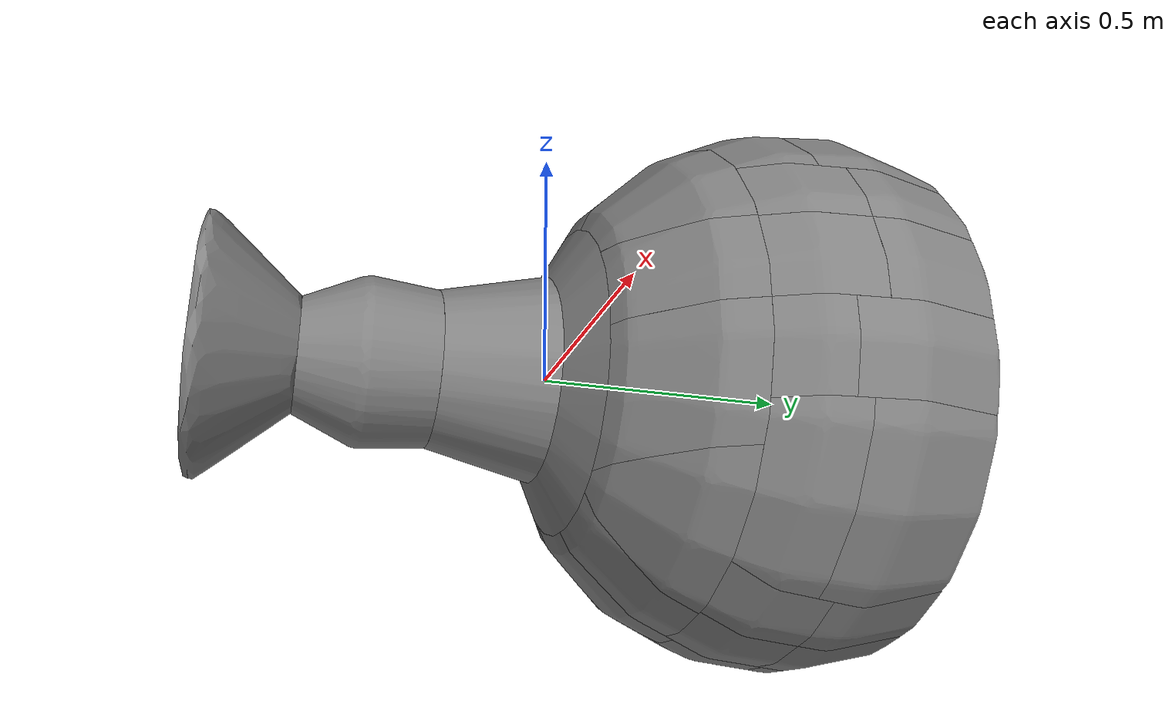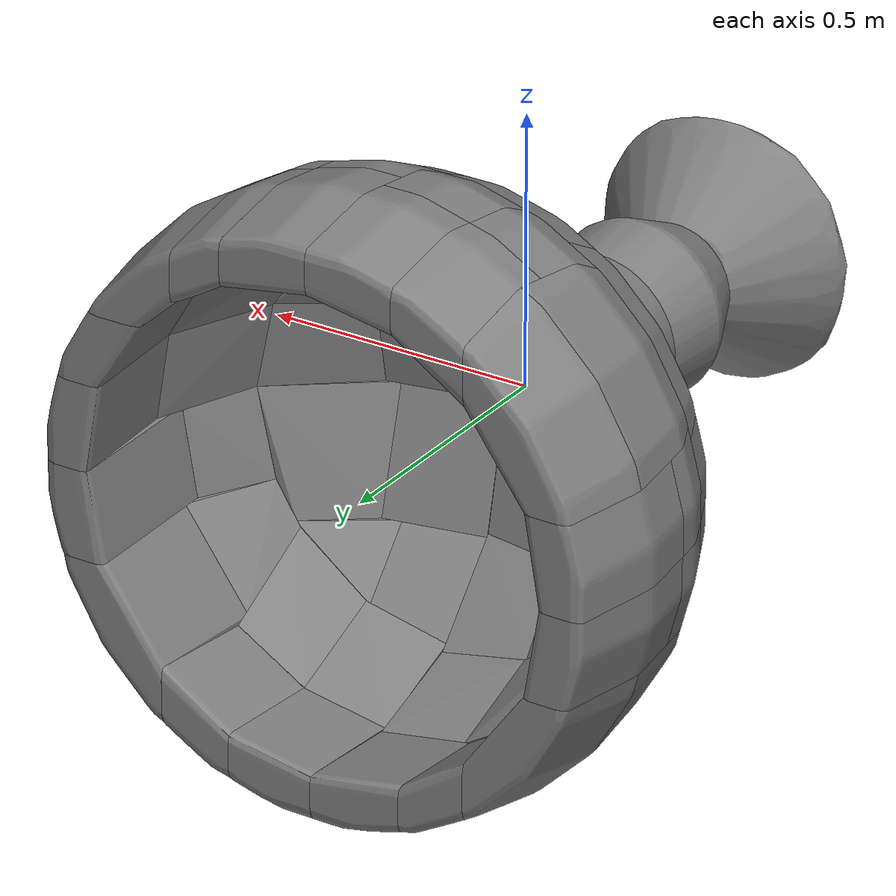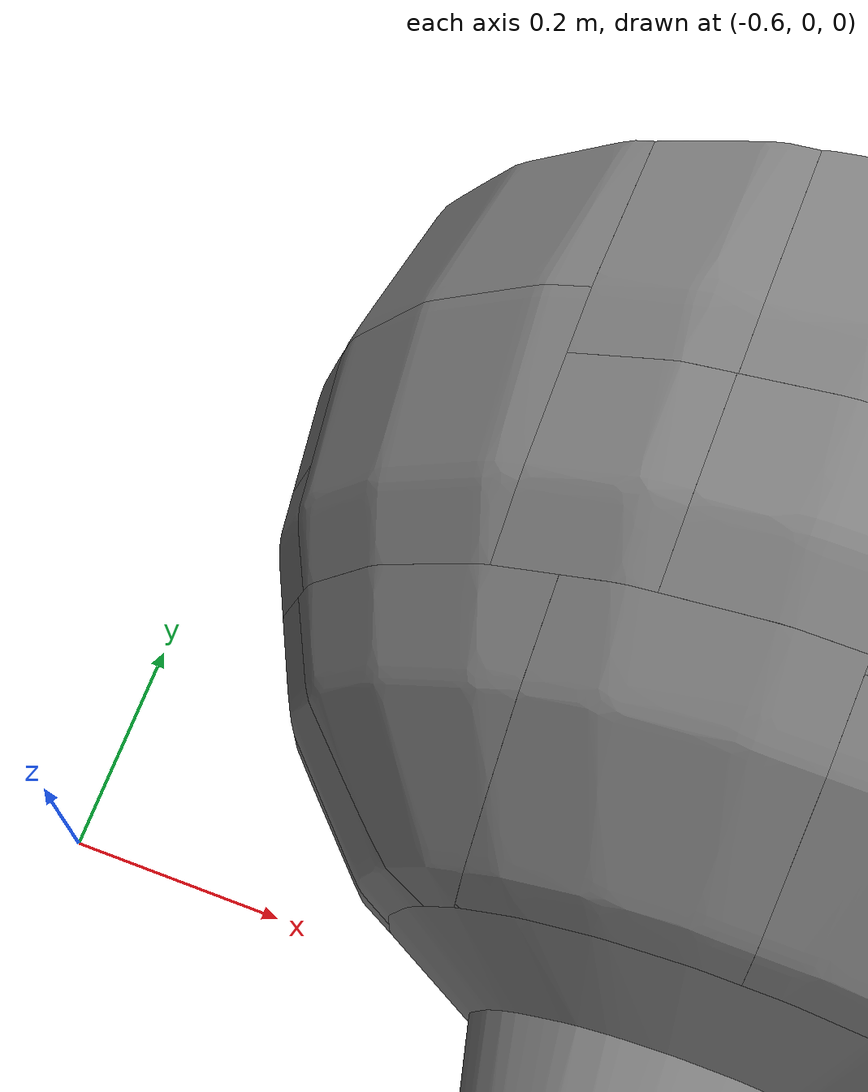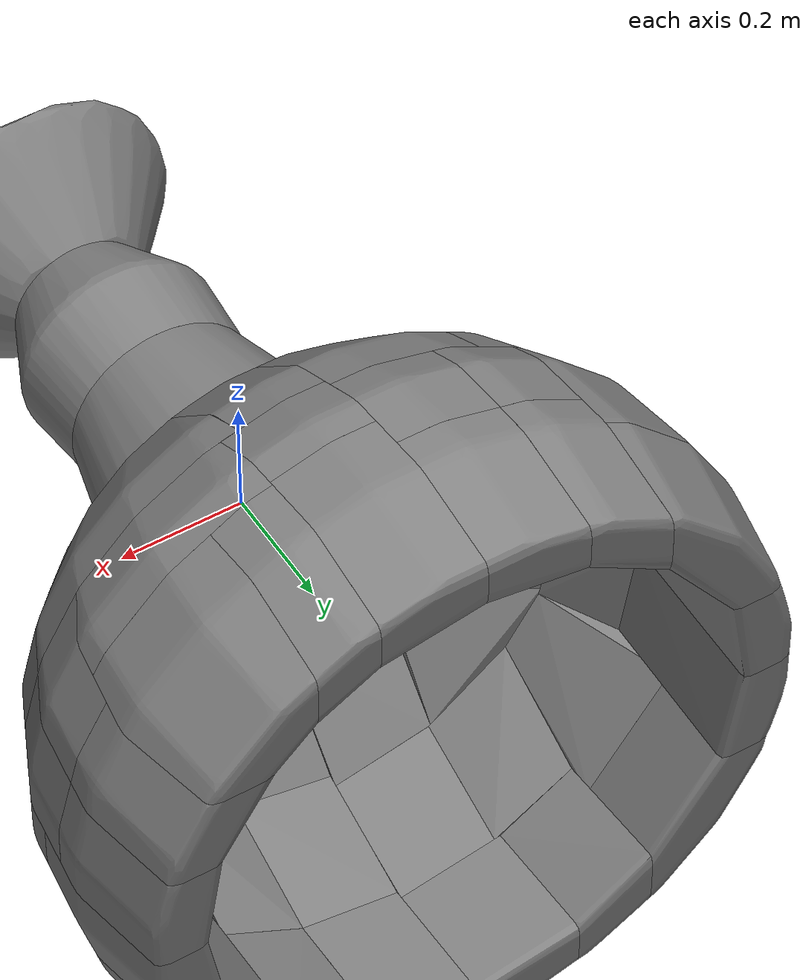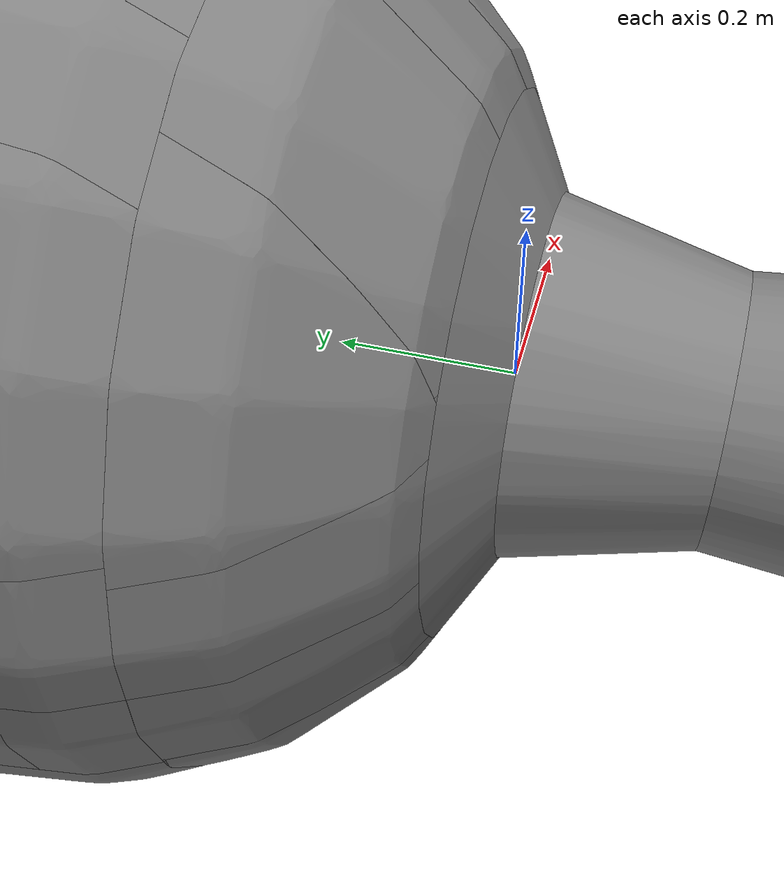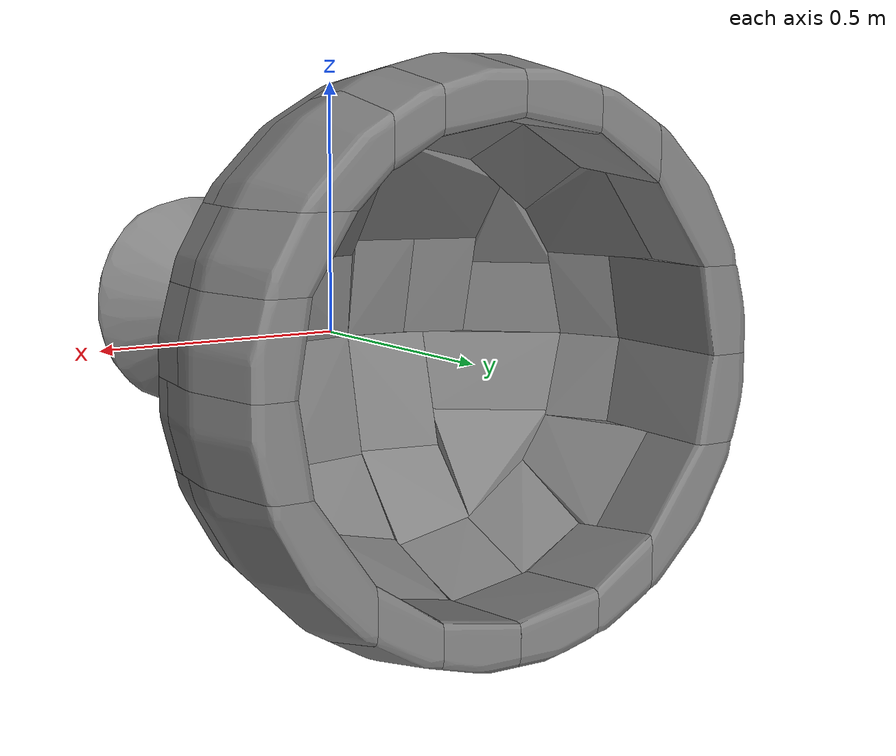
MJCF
<mujoco model="MuJoCo Model">
  <compiler angle="radian" meshdir="."/>

  <asset>
    <mesh name="convex_piece_028.obj" file="meshes/convex_piece_028.obj"/>
    <mesh name="convex_piece_018.obj" file="meshes/convex_piece_018.obj"/>
    <mesh name="convex_piece_026.obj" file="meshes/convex_piece_026.obj"/>
    <mesh name="convex_piece_021.obj" file="meshes/convex_piece_021.obj"/>
    <mesh name="convex_piece_049.obj" file="meshes/convex_piece_049.obj"/>
    <mesh name="convex_piece_051.obj" file="meshes/convex_piece_051.obj"/>
    <mesh name="convex_piece_030.obj" file="meshes/convex_piece_030.obj"/>
    <mesh name="convex_piece_012.obj" file="meshes/convex_piece_012.obj"/>
    <mesh name="convex_piece_046.obj" file="meshes/convex_piece_046.obj"/>
    <mesh name="convex_piece_042.obj" file="meshes/convex_piece_042.obj"/>
    <mesh name="convex_piece_019.obj" file="meshes/convex_piece_019.obj"/>
    <mesh name="convex_piece_040.obj" file="meshes/convex_piece_040.obj"/>
    <mesh name="convex_piece_014.obj" file="meshes/convex_piece_014.obj"/>
    <mesh name="convex_piece_020.obj" file="meshes/convex_piece_020.obj"/>
    <mesh name="convex_piece_004.obj" file="meshes/convex_piece_004.obj"/>
    <mesh name="convex_piece_039.obj" file="meshes/convex_piece_039.obj"/>
    <mesh name="convex_piece_027.obj" file="meshes/convex_piece_027.obj"/>
    <mesh name="convex_piece_001.obj" file="meshes/convex_piece_001.obj"/>
    <mesh name="convex_piece_015.obj" file="meshes/convex_piece_015.obj"/>
    <mesh name="convex_piece_005.obj" file="meshes/convex_piece_005.obj"/>
    <mesh name="convex_piece_037.obj" file="meshes/convex_piece_037.obj"/>
    <mesh name="convex_piece_036.obj" file="meshes/convex_piece_036.obj"/>
    <mesh name="convex_piece_024.obj" file="meshes/convex_piece_024.obj"/>
    <mesh name="convex_piece_013.obj" file="meshes/convex_piece_013.obj"/>
    <mesh name="convex_piece_048.obj" file="meshes/convex_piece_048.obj"/>
    <mesh name="convex_piece_029.obj" file="meshes/convex_piece_029.obj"/>
    <mesh name="convex_piece_032.obj" file="meshes/convex_piece_032.obj"/>
    <mesh name="convex_piece_050.obj" file="meshes/convex_piece_050.obj"/>
    <mesh name="convex_piece_034.obj" file="meshes/convex_piece_034.obj"/>
    <mesh name="convex_piece_002.obj" file="meshes/convex_piece_002.obj"/>
    <mesh name="convex_piece_035.obj" file="meshes/convex_piece_035.obj"/>
    <mesh name="convex_piece_043.obj" file="meshes/convex_piece_043.obj"/>
    <mesh name="convex_piece_025.obj" file="meshes/convex_piece_025.obj"/>
    <mesh name="convex_piece_033.obj" file="meshes/convex_piece_033.obj"/>
    <mesh name="convex_piece_010.obj" file="meshes/convex_piece_010.obj"/>
    <mesh name="convex_piece_044.obj" file="meshes/convex_piece_044.obj"/>
    <mesh name="convex_piece_006.obj" file="meshes/convex_piece_006.obj"/>
    <mesh name="convex_piece_045.obj" file="meshes/convex_piece_045.obj"/>
    <mesh name="convex_piece_003.obj" file="meshes/convex_piece_003.obj"/>
    <mesh name="convex_piece_038.obj" file="meshes/convex_piece_038.obj"/>
    <mesh name="convex_piece_047.obj" file="meshes/convex_piece_047.obj"/>
    <mesh name="convex_piece_008.obj" file="meshes/convex_piece_008.obj"/>
    <mesh name="convex_piece_023.obj" file="meshes/convex_piece_023.obj"/>
    <mesh name="convex_piece_022.obj" file="meshes/convex_piece_022.obj"/>
    <mesh name="convex_piece_011.obj" file="meshes/convex_piece_011.obj"/>
    <mesh name="convex_piece_053.obj" file="meshes/convex_piece_053.obj"/>
    <mesh name="convex_piece_000.obj" file="meshes/convex_piece_000.obj"/>
    <mesh name="convex_piece_016.obj" file="meshes/convex_piece_016.obj"/>
    <mesh name="convex_piece_009.obj" file="meshes/convex_piece_009.obj"/>
    <mesh name="convex_piece_007.obj" file="meshes/convex_piece_007.obj"/>
    <mesh name="convex_piece_052.obj" file="meshes/convex_piece_052.obj"/>
    <mesh name="convex_piece_041.obj" file="meshes/convex_piece_041.obj"/>
    <mesh name="convex_piece_017.obj" file="meshes/convex_piece_017.obj"/>
    <mesh name="convex_piece_031.obj" file="meshes/convex_piece_031.obj"/>
  </asset>

  <worldbody>
    <geom name="object_visual_0" type="mesh" contype="0" conaffinity="0" density="0" mesh="convex_piece_028.obj"/>
    <geom name="object_collision_0" type="mesh" mesh="convex_piece_028.obj"/>
    <geom name="object_visual_1" type="mesh" contype="0" conaffinity="0" density="0" mesh="convex_piece_018.obj"/>
    <geom name="object_collision_1" type="mesh" mesh="convex_piece_018.obj"/>
    <geom name="object_visual_2" type="mesh" contype="0" conaffinity="0" density="0" mesh="convex_piece_026.obj"/>
    <geom name="object_collision_2" type="mesh" mesh="convex_piece_026.obj"/>
    <geom name="object_visual_3" type="mesh" contype="0" conaffinity="0" density="0" mesh="convex_piece_021.obj"/>
    <geom name="object_collision_3" type="mesh" mesh="convex_piece_021.obj"/>
    <geom name="object_visual_4" type="mesh" contype="0" conaffinity="0" density="0" mesh="convex_piece_049.obj"/>
    <geom name="object_collision_4" type="mesh" mesh="convex_piece_049.obj"/>
    <geom name="object_visual_5" type="mesh" contype="0" conaffinity="0" density="0" mesh="convex_piece_051.obj"/>
    <geom name="object_collision_5" type="mesh" mesh="convex_piece_051.obj"/>
    <geom name="object_visual_6" type="mesh" contype="0" conaffinity="0" density="0" mesh="convex_piece_030.obj"/>
    <geom name="object_collision_6" type="mesh" mesh="convex_piece_030.obj"/>
    <geom name="object_visual_7" type="mesh" contype="0" conaffinity="0" density="0" mesh="convex_piece_012.obj"/>
    <geom name="object_collision_7" type="mesh" mesh="convex_piece_012.obj"/>
    <geom name="object_visual_8" type="mesh" contype="0" conaffinity="0" density="0" mesh="convex_piece_046.obj"/>
    <geom name="object_collision_8" type="mesh" mesh="convex_piece_046.obj"/>
    <geom name="object_visual_9" type="mesh" contype="0" conaffinity="0" density="0" mesh="convex_piece_042.obj"/>
    <geom name="object_collision_9" type="mesh" mesh="convex_piece_042.obj"/>
    <geom name="object_visual_10" type="mesh" contype="0" conaffinity="0" density="0" mesh="convex_piece_019.obj"/>
    <geom name="object_collision_10" type="mesh" mesh="convex_piece_019.obj"/>
    <geom name="object_visual_11" type="mesh" contype="0" conaffinity="0" density="0" mesh="convex_piece_040.obj"/>
    <geom name="object_collision_11" type="mesh" mesh="convex_piece_040.obj"/>
    <geom name="object_visual_12" type="mesh" contype="0" conaffinity="0" density="0" mesh="convex_piece_014.obj"/>
    <geom name="object_collision_12" type="mesh" mesh="convex_piece_014.obj"/>
    <geom name="object_visual_13" type="mesh" contype="0" conaffinity="0" density="0" mesh="convex_piece_020.obj"/>
    <geom name="object_collision_13" type="mesh" mesh="convex_piece_020.obj"/>
    <geom name="object_visual_14" type="mesh" contype="0" conaffinity="0" density="0" mesh="convex_piece_004.obj"/>
    <geom name="object_collision_14" type="mesh" mesh="convex_piece_004.obj"/>
    <geom name="object_visual_15" type="mesh" contype="0" conaffinity="0" density="0" mesh="convex_piece_039.obj"/>
    <geom name="object_collision_15" type="mesh" mesh="convex_piece_039.obj"/>
    <geom name="object_visual_16" type="mesh" contype="0" conaffinity="0" density="0" mesh="convex_piece_027.obj"/>
    <geom name="object_collision_16" type="mesh" mesh="convex_piece_027.obj"/>
    <geom name="object_visual_17" type="mesh" contype="0" conaffinity="0" density="0" mesh="convex_piece_001.obj"/>
    <geom name="object_collision_17" type="mesh" mesh="convex_piece_001.obj"/>
    <geom name="object_visual_18" type="mesh" contype="0" conaffinity="0" density="0" mesh="convex_piece_015.obj"/>
    <geom name="object_collision_18" type="mesh" mesh="convex_piece_015.obj"/>
    <geom name="object_visual_19" type="mesh" contype="0" conaffinity="0" density="0" mesh="convex_piece_005.obj"/>
    <geom name="object_collision_19" type="mesh" mesh="convex_piece_005.obj"/>
    <geom name="object_visual_20" type="mesh" contype="0" conaffinity="0" density="0" mesh="convex_piece_037.obj"/>
    <geom name="object_collision_20" type="mesh" mesh="convex_piece_037.obj"/>
    <geom name="object_visual_21" type="mesh" contype="0" conaffinity="0" density="0" mesh="convex_piece_036.obj"/>
    <geom name="object_collision_21" type="mesh" mesh="convex_piece_036.obj"/>
    <geom name="object_visual_22" type="mesh" contype="0" conaffinity="0" density="0" mesh="convex_piece_024.obj"/>
    <geom name="object_collision_22" type="mesh" mesh="convex_piece_024.obj"/>
    <geom name="object_visual_23" type="mesh" contype="0" conaffinity="0" density="0" mesh="convex_piece_013.obj"/>
    <geom name="object_collision_23" type="mesh" mesh="convex_piece_013.obj"/>
    <geom name="object_visual_24" type="mesh" contype="0" conaffinity="0" density="0" mesh="convex_piece_048.obj"/>
    <geom name="object_collision_24" type="mesh" mesh="convex_piece_048.obj"/>
    <geom name="object_visual_25" type="mesh" contype="0" conaffinity="0" density="0" mesh="convex_piece_029.obj"/>
    <geom name="object_collision_25" type="mesh" mesh="convex_piece_029.obj"/>
    <geom name="object_visual_26" type="mesh" contype="0" conaffinity="0" density="0" mesh="convex_piece_032.obj"/>
    <geom name="object_collision_26" type="mesh" mesh="convex_piece_032.obj"/>
    <geom name="object_visual_27" type="mesh" contype="0" conaffinity="0" density="0" mesh="convex_piece_050.obj"/>
    <geom name="object_collision_27" type="mesh" mesh="convex_piece_050.obj"/>
    <geom name="object_visual_28" type="mesh" contype="0" conaffinity="0" density="0" mesh="convex_piece_034.obj"/>
    <geom name="object_collision_28" type="mesh" mesh="convex_piece_034.obj"/>
    <geom name="object_visual_29" type="mesh" contype="0" conaffinity="0" density="0" mesh="convex_piece_002.obj"/>
    <geom name="object_collision_29" type="mesh" mesh="convex_piece_002.obj"/>
    <geom name="object_visual_30" type="mesh" contype="0" conaffinity="0" density="0" mesh="convex_piece_035.obj"/>
    <geom name="object_collision_30" type="mesh" mesh="convex_piece_035.obj"/>
    <geom name="object_visual_31" type="mesh" contype="0" conaffinity="0" density="0" mesh="convex_piece_043.obj"/>
    <geom name="object_collision_31" type="mesh" mesh="convex_piece_043.obj"/>
    <geom name="object_visual_32" type="mesh" contype="0" conaffinity="0" density="0" mesh="convex_piece_025.obj"/>
    <geom name="object_collision_32" type="mesh" mesh="convex_piece_025.obj"/>
    <geom name="object_visual_33" type="mesh" contype="0" conaffinity="0" density="0" mesh="convex_piece_033.obj"/>
    <geom name="object_collision_33" type="mesh" mesh="convex_piece_033.obj"/>
    <geom name="object_visual_34" type="mesh" contype="0" conaffinity="0" density="0" mesh="convex_piece_010.obj"/>
    <geom name="object_collision_34" type="mesh" mesh="convex_piece_010.obj"/>
    <geom name="object_visual_35" type="mesh" contype="0" conaffinity="0" density="0" mesh="convex_piece_044.obj"/>
    <geom name="object_collision_35" type="mesh" mesh="convex_piece_044.obj"/>
    <geom name="object_visual_36" type="mesh" contype="0" conaffinity="0" density="0" mesh="convex_piece_006.obj"/>
    <geom name="object_collision_36" type="mesh" mesh="convex_piece_006.obj"/>
    <geom name="object_visual_37" type="mesh" contype="0" conaffinity="0" density="0" mesh="convex_piece_045.obj"/>
    <geom name="object_collision_37" type="mesh" mesh="convex_piece_045.obj"/>
    <geom name="object_visual_38" type="mesh" contype="0" conaffinity="0" density="0" mesh="convex_piece_003.obj"/>
    <geom name="object_collision_38" type="mesh" mesh="convex_piece_003.obj"/>
    <geom name="object_visual_39" type="mesh" contype="0" conaffinity="0" density="0" mesh="convex_piece_038.obj"/>
    <geom name="object_collision_39" type="mesh" mesh="convex_piece_038.obj"/>
    <geom name="object_visual_40" type="mesh" contype="0" conaffinity="0" density="0" mesh="convex_piece_047.obj"/>
    <geom name="object_collision_40" type="mesh" mesh="convex_piece_047.obj"/>
    <geom name="object_visual_41" type="mesh" contype="0" conaffinity="0" density="0" mesh="convex_piece_008.obj"/>
    <geom name="object_collision_41" type="mesh" mesh="convex_piece_008.obj"/>
    <geom name="object_visual_42" type="mesh" contype="0" conaffinity="0" density="0" mesh="convex_piece_023.obj"/>
    <geom name="object_collision_42" type="mesh" mesh="convex_piece_023.obj"/>
    <geom name="object_visual_43" type="mesh" contype="0" conaffinity="0" density="0" mesh="convex_piece_022.obj"/>
    <geom name="object_collision_43" type="mesh" mesh="convex_piece_022.obj"/>
    <geom name="object_visual_44" type="mesh" contype="0" conaffinity="0" density="0" mesh="convex_piece_011.obj"/>
    <geom name="object_collision_44" type="mesh" mesh="convex_piece_011.obj"/>
    <geom name="object_visual_45" type="mesh" contype="0" conaffinity="0" density="0" mesh="convex_piece_053.obj"/>
    <geom name="object_collision_45" type="mesh" mesh="convex_piece_053.obj"/>
    <geom name="object_visual_46" type="mesh" contype="0" conaffinity="0" density="0" mesh="convex_piece_000.obj"/>
    <geom name="object_collision_46" type="mesh" mesh="convex_piece_000.obj"/>
    <geom name="object_visual_47" type="mesh" contype="0" conaffinity="0" density="0" mesh="convex_piece_016.obj"/>
    <geom name="object_collision_47" type="mesh" mesh="convex_piece_016.obj"/>
    <geom name="object_visual_48" type="mesh" contype="0" conaffinity="0" density="0" mesh="convex_piece_009.obj"/>
    <geom name="object_collision_48" type="mesh" mesh="convex_piece_009.obj"/>
    <geom name="object_visual_49" type="mesh" contype="0" conaffinity="0" density="0" mesh="convex_piece_007.obj"/>
    <geom name="object_collision_49" type="mesh" mesh="convex_piece_007.obj"/>
    <geom name="object_visual_50" type="mesh" contype="0" conaffinity="0" density="0" mesh="convex_piece_052.obj"/>
    <geom name="object_collision_50" type="mesh" mesh="convex_piece_052.obj"/>
    <geom name="object_visual_51" type="mesh" contype="0" conaffinity="0" density="0" mesh="convex_piece_041.obj"/>
    <geom name="object_collision_51" type="mesh" mesh="convex_piece_041.obj"/>
    <geom name="object_visual_52" type="mesh" contype="0" conaffinity="0" density="0" mesh="convex_piece_017.obj"/>
    <geom name="object_collision_52" type="mesh" mesh="convex_piece_017.obj"/>
    <geom name="object_visual_53" type="mesh" contype="0" conaffinity="0" density="0" mesh="convex_piece_031.obj"/>
    <geom name="object_collision_53" type="mesh" mesh="convex_piece_031.obj"/>
  </worldbody>
</mujoco>
